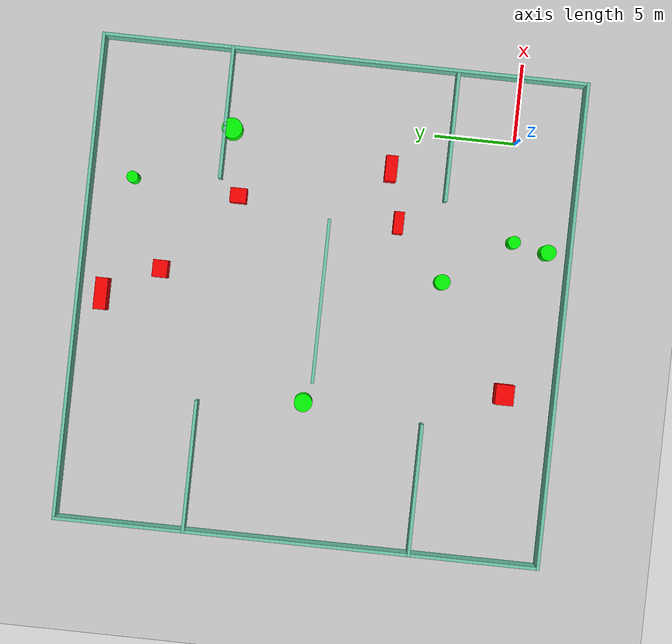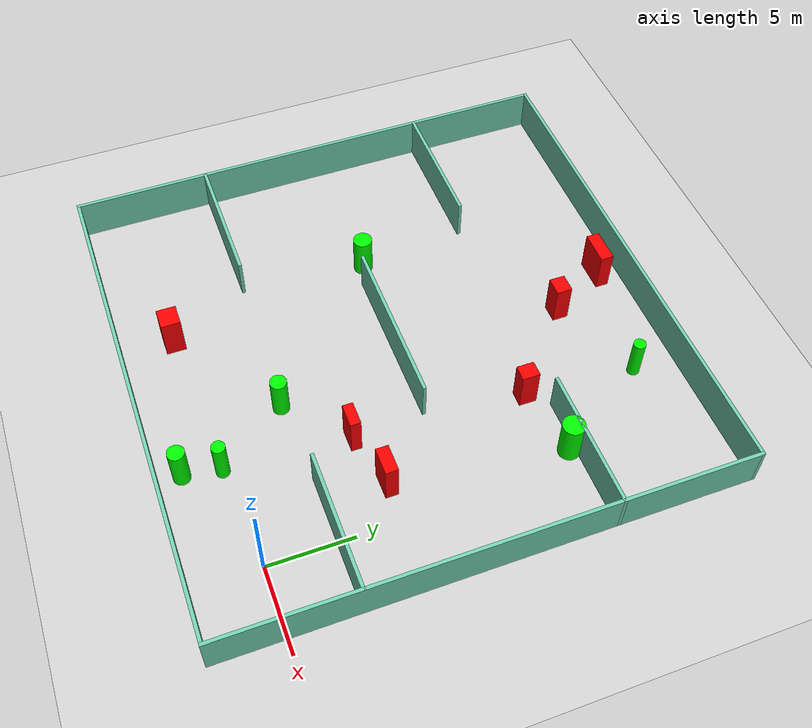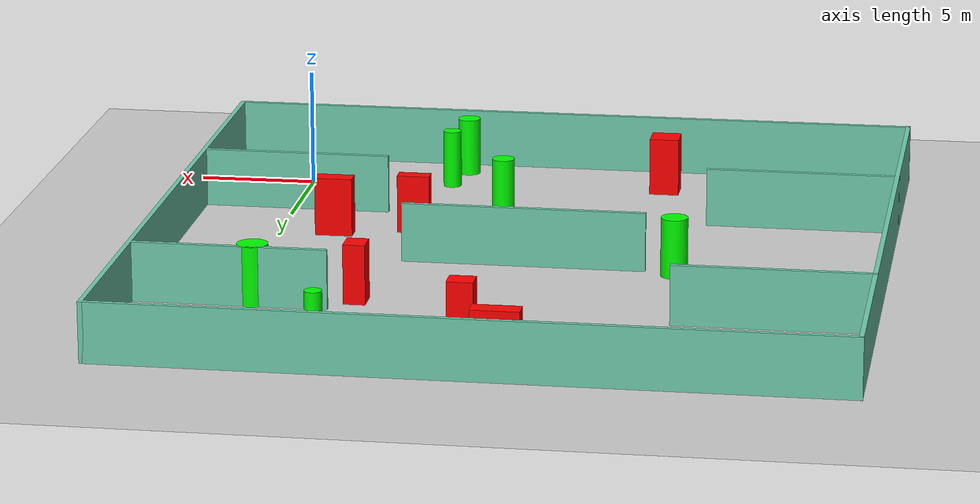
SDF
<sdf version="1.7">
 <world name="default">
  <light name="sun" type="directional">
   <pose>0 0 10 0 -0 0</pose>
   <diffuse>0.8 0.8 0.8 1</diffuse>
   <specular>0.2 0.2 0.2 1</specular>
   <attenuation>
    <range>1000</range>
    <constant>0.9</constant>
    <linear>0.01</linear>
    <quadratic>0.001</quadratic>
   </attenuation>
   <direction>-0.5 0.1 -0.9</direction>
   <spot><inner_angle>0</inner_angle><outer_angle>0</outer_angle><falloff>0</falloff></spot>
  </light>
  <model name="ground_plane">
   <static>1</static>
   <link name="link">
    <collision name="collision">
     <geometry><plane><normal>0 0 1</normal><size>100 100</size></plane></geometry>
     <surface>
      <contact><collide_bitmask>65535</collide_bitmask></contact>
      <friction><ode><mu>100</mu><mu2>50</mu2></ode></friction>
     </surface>
    </collision>
    <visual name="visual">
     <cast_shadows>0</cast_shadows>
     <geometry><plane><normal>0 0 1</normal><size>100 100</size></plane></geometry>
     <material>
      <script><uri>file://media/materials/scripts/gazebo.material</uri><name>Gazebo/Grey</name></script>
     </material>
    </visual>
   </link>
  </model>
  <gravity>0 0 -9.8</gravity>
  <magnetic_field>6e-06 2.3e-05 -4.2e-05</magnetic_field>
  <atmosphere type="adiabatic"/>
  <physics type="ode">
   <max_step_size>0.001</max_step_size>
   <real_time_factor>1</real_time_factor>
   <real_time_update_rate>1000</real_time_update_rate>
  </physics>
  <scene><ambient>0.4 0.4 0.4 1</ambient><background>0.7 0.7 0.7 1</background><shadows>1</shadows></scene>
  <spherical_coordinates>
   <surface_model>EARTH_WGS84</surface_model>
   <latitude_deg>0</latitude_deg>
   <longitude_deg>0</longitude_deg>
   <elevation>0</elevation>
   <heading_deg>0</heading_deg>
  </spherical_coordinates>
  <model name="my_base_walls">
   <link name="Wall_10">
    <collision name="Wall_10_Collision">
     <geometry><box><size>8.2 0.2 2.5</size></box></geometry>
     <pose>0 0 1.25 0 -0 0</pose>
    </collision>
    <visual name="Wall_10_Visual">
     <pose>0 0 1.25 0 -0 0</pose>
     <geometry><box><size>8.2 0.2 2.5</size></box></geometry>
     <material>
      <script><uri>file://media/materials/scripts/gazebo.material</uri><name>Gazebo/Grey</name></script>
      <ambient>0.435294 0.796078 0.67451 1</ambient>
     </material>
     <meta><layer>0</layer></meta>
    </visual>
    <pose>-11 -7 0 0 -0 0</pose>
   </link>
   <link name="Wall_12">
    <collision name="Wall_12_Collision">
     <geometry><box><size>8.2 0.2 2.5</size></box></geometry>
     <pose>0 0 1.25 0 -0 0</pose>
    </collision>
    <visual name="Wall_12_Visual">
     <pose>0 0 1.25 0 -0 0</pose>
     <geometry><box><size>8.2 0.2 2.5</size></box></geometry>
     <material>
      <script><uri>file://media/materials/scripts/gazebo.material</uri><name>Gazebo/Grey</name></script>
      <ambient>0.435294 0.796078 0.67451 1</ambient>
     </material>
     <meta><layer>0</layer></meta>
    </visual>
    <pose>-11 7 0 0 -0 0</pose>
   </link>
   <link name="Wall_14">
    <collision name="Wall_14_Collision">
     <geometry><box><size>8.2 0.2 2.5</size></box></geometry>
     <pose>0 0 1.25 0 -0 0</pose>
    </collision>
    <visual name="Wall_14_Visual">
     <pose>0 0 1.25 0 -0 0</pose>
     <geometry><box><size>8.2 0.2 2.5</size></box></geometry>
     <material>
      <script><uri>file://media/materials/scripts/gazebo.material</uri><name>Gazebo/Grey</name></script>
      <ambient>0.435294 0.796078 0.67451 1</ambient>
     </material>
     <meta><layer>0</layer></meta>
    </visual>
    <pose>11 7 0 0 -0 3.14159</pose>
   </link>
   <link name="Wall_16">
    <collision name="Wall_16_Collision">
     <geometry><box><size>10.2 0.2 2.5</size></box></geometry>
     <pose>0 0 1.25 0 -0 0</pose>
    </collision>
    <visual name="Wall_16_Visual">
     <pose>0 0 1.25 0 -0 0</pose>
     <geometry><box><size>10.2 0.2 2.5</size></box></geometry>
     <material>
      <script><uri>file://media/materials/scripts/gazebo.material</uri><name>Gazebo/Grey</name></script>
      <ambient>0.435294 0.796078 0.67451 1</ambient>
     </material>
     <meta><layer>0</layer></meta>
    </visual>
    <pose>0 0 0 0 -0 3.14159</pose>
   </link>
   <link name="Wall_2">
    <collision name="Wall_2_Collision">
     <geometry><box><size>30.2 0.2 2.5</size></box></geometry>
     <pose>0 0 1.25 0 -0 0</pose>
    </collision>
    <visual name="Wall_2_Visual">
     <pose>0 0 1.25 0 -0 0</pose>
     <geometry><box><size>30.2 0.2 2.5</size></box></geometry>
     <material>
      <script><uri>file://media/materials/scripts/gazebo.material</uri><name>Gazebo/Grey</name></script>
      <ambient>0.435294 0.796078 0.67451 1</ambient>
     </material>
     <meta><layer>0</layer></meta>
    </visual>
    <pose>0 -15 0 0 -0 3.14159</pose>
   </link>
   <link name="Wall_3">
    <collision name="Wall_3_Collision">
     <geometry><box><size>30.2 0.2 2.5</size></box></geometry>
     <pose>0 0 1.25 0 -0 0</pose>
    </collision>
    <visual name="Wall_3_Visual">
     <pose>0 0 1.25 0 -0 0</pose>
     <geometry><box><size>30.2 0.2 2.5</size></box></geometry>
     <material>
      <script><uri>file://media/materials/scripts/gazebo.material</uri><name>Gazebo/Grey</name></script>
      <ambient>0.435294 0.796078 0.67451 1</ambient>
     </material>
     <meta><layer>0</layer></meta>
    </visual>
    <pose>-15 0 0 0 -0 1.5708</pose>
   </link>
   <link name="Wall_4">
    <collision name="Wall_4_Collision">
     <geometry><box><size>30.2 0.2 2.5</size></box></geometry>
     <pose>0 0 1.25 0 -0 0</pose>
    </collision>
    <visual name="Wall_4_Visual">
     <pose>0 0 1.25 0 -0 0</pose>
     <geometry><box><size>30.2 0.2 2.5</size></box></geometry>
     <material>
      <script><uri>file://media/materials/scripts/gazebo.material</uri><name>Gazebo/Grey</name></script>
      <ambient>0.435294 0.796078 0.67451 1</ambient>
     </material>
     <meta><layer>0</layer></meta>
    </visual>
    <pose>0 15 0 0 -0 0</pose>
   </link>
   <link name="Wall_6">
    <collision name="Wall_6_Collision">
     <geometry><box><size>30.2 0.2 2.5</size></box></geometry>
     <pose>0 0 1.25 0 -0 0</pose>
    </collision>
    <visual name="Wall_6_Visual">
     <pose>0 0 1.25 0 -0 0</pose>
     <geometry><box><size>30.2 0.2 2.5</size></box></geometry>
     <material>
      <script><uri>file://media/materials/scripts/gazebo.material</uri><name>Gazebo/Grey</name></script>
      <ambient>0.435294 0.796078 0.67451 1</ambient>
     </material>
     <meta><layer>0</layer></meta>
    </visual>
    <pose>15 0 0 0 -0 1.5708</pose>
   </link>
   <link name="Wall_8">
    <collision name="Wall_8_Collision">
     <geometry><box><size>8.2 0.2 2.5</size></box></geometry>
     <pose>0 0 1.25 0 -0 0</pose>
    </collision>
    <visual name="Wall_8_Visual">
     <pose>0 0 1.25 0 -0 0</pose>
     <geometry><box><size>8.2 0.2 2.5</size></box></geometry>
     <material>
      <script><uri>file://media/materials/scripts/gazebo.material</uri><name>Gazebo/Grey</name></script>
      <ambient>0.435294 0.796078 0.67451 1</ambient>
     </material>
     <meta><layer>0</layer></meta>
    </visual>
    <pose>11 -7 0 0 -0 3.14159</pose>
   </link>
   <static>1</static>
   <pose>-11 11 0 0 -0 0</pose>
  </model>
  <model name="cylinder1">
   <static>1</static>
   <link name="link">
    <inertial>
     <mass>1</mass>
     <inertia><ixx>0.5</ixx><ixy>0</ixy><ixz>0</ixz><iyy>0.5</iyy><iyz>0</iyz><izz>1</izz></inertia>
    </inertial>
    <collision name="collision">
     <geometry><cylinder><radius>0.48361115552450673</radius><length>2.5</length></cylinder></geometry>
    </collision>
    <visual name="visual">
     <geometry><cylinder><radius>0.48361115552450673</radius><length>2.5</length></cylinder></geometry>
     <material>
      <ambient>0 1 0 1</ambient>
      <diffuse>0 1 0 1</diffuse>
      <specular>0.1 0.1 0.1 1</specular>
      <emissive>0 0 0 0</emissive>
     </material>
    </visual>
   </link>
   <pose>-9.059128392471624 3.6702715348862363 1.25 0 0 0</pose>
  </model>
  <model name="cylinder2">
   <static>1</static>
   <link name="link">
    <inertial>
     <mass>1</mass>
     <inertia><ixx>0.5</ixx><ixy>0</ixy><ixz>0</ixz><iyy>0.5</iyy><iyz>0</iyz><izz>1</izz></inertia>
    </inertial>
    <collision name="collision">
     <geometry><cylinder><radius>0.6380948718498066</radius><length>2.5</length></cylinder></geometry>
    </collision>
    <visual name="visual">
     <geometry><cylinder><radius>0.6380948718498066</radius><length>2.5</length></cylinder></geometry>
     <material>
      <ambient>0 1 0 1</ambient>
      <diffuse>0 1 0 1</diffuse>
      <specular>0.1 0.1 0.1 1</specular>
      <emissive>0 0 0 0</emissive>
     </material>
    </visual>
   </link>
   <pose>-0.9684224990667154 17.550435489567228 1.25 0 0 0</pose>
  </model>
  <model name="cylinder3">
   <static>1</static>
   <link name="link">
    <inertial>
     <mass>1</mass>
     <inertia><ixx>0.5</ixx><ixy>0</ixy><ixz>0</ixz><iyy>0.5</iyy><iyz>0</iyz><izz>1</izz></inertia>
    </inertial>
    <collision name="collision">
     <geometry><cylinder><radius>0.4887220908700379</radius><length>2.5</length></cylinder></geometry>
    </collision>
    <visual name="visual">
     <geometry><cylinder><radius>0.4887220908700379</radius><length>2.5</length></cylinder></geometry>
     <material>
      <ambient>0 1 0 1</ambient>
      <diffuse>0 1 0 1</diffuse>
      <specular>0.1 0.1 0.1 1</specular>
      <emissive>0 0 0 0</emissive>
     </material>
    </visual>
   </link>
   <pose>-6.578670815010728 -2.627177614565456 1.25 0 0 0</pose>
  </model>
  <model name="cylinder4">
   <static>1</static>
   <link name="link">
    <inertial>
     <mass>1</mass>
     <inertia><ixx>0.5</ixx><ixy>0</ixy><ixz>0</ixz><iyy>0.5</iyy><iyz>0</iyz><izz>1</izz></inertia>
    </inertial>
    <collision name="collision">
     <geometry><cylinder><radius>0.3928988408508365</radius><length>2.5</length></cylinder></geometry>
    </collision>
    <visual name="visual">
     <geometry><cylinder><radius>0.3928988408508365</radius><length>2.5</length></cylinder></geometry>
     <material>
      <ambient>0 1 0 1</ambient>
      <diffuse>0 1 0 1</diffuse>
      <specular>0.1 0.1 0.1 1</specular>
      <emissive>0 0 0 0</emissive>
     </material>
    </visual>
   </link>
   <pose>-6.161032865576805 -0.4720946187778958 1.25 0 0 0</pose>
  </model>
  <model name="cylinder5">
   <static>1</static>
   <link name="link">
    <inertial>
     <mass>1</mass>
     <inertia><ixx>0.5</ixx><ixy>0</ixy><ixz>0</ixz><iyy>0.5</iyy><iyz>0</iyz><izz>1</izz></inertia>
    </inertial>
    <collision name="collision">
     <geometry><cylinder><radius>0.3566019229148118</radius><length>2.5</length></cylinder></geometry>
    </collision>
    <visual name="visual">
     <geometry><cylinder><radius>0.3566019229148118</radius><length>2.5</length></cylinder></geometry>
     <material>
      <ambient>0 1 0 1</ambient>
      <diffuse>0 1 0 1</diffuse>
      <specular>0.1 0.1 0.1 1</specular>
      <emissive>0 0 0 0</emissive>
     </material>
    </visual>
   </link>
   <pose>-4.586129920268032 23.344670526341567 1.25 0 0 0</pose>
  </model>
  <model name="cylinder6">
   <static>1</static>
   <link name="link">
    <inertial>
     <mass>1</mass>
     <inertia><ixx>0.5</ixx><ixy>0</ixy><ixz>0</ixz><iyy>0.5</iyy><iyz>0</iyz><izz>1</izz></inertia>
    </inertial>
    <collision name="collision">
     <geometry><cylinder><radius>0.5634502462901253</radius><length>2.5</length></cylinder></geometry>
    </collision>
    <visual name="visual">
     <geometry><cylinder><radius>0.5634502462901253</radius><length>2.5</length></cylinder></geometry>
     <material>
      <ambient>0 1 0 1</ambient>
      <diffuse>0 1 0 1</diffuse>
      <specular>0.1 0.1 0.1 1</specular>
      <emissive>0 0 0 0</emissive>
     </material>
    </visual>
   </link>
   <pose>-17.338673748696166 11.439401426015893 1.25 0 0 0</pose>
  </model>
  <model name="box1">
   <static>1</static>
   <link name="link">
    <inertial>
     <mass>1</mass>
     <inertia><ixx>0.083</ixx><ixy>0</ixy><ixz>0</ixz><iyy>0.083</iyy><iyz>0</iyz><izz>0.083</izz></inertia>
    </inertial>
    <collision name="collision">
     <geometry><box><size>1.9822506181855593 0.7745365893817013 2.5</size></box></geometry>
    </collision>
    <visual name="visual">
     <geometry><box><size>1.9822506181855593 0.7745365893817013 2.5</size></box></geometry>
     <material>
      <ambient>1 0 0 1</ambient>
      <diffuse>1 0 0 1</diffuse>
      <specular>0.1 0.1 0.1 1</specular>
      <emissive>0 0 0 0</emissive>
     </material>
    </visual>
    <sensor name="my_contact" type="contact">
     <contact><collision>box_collision</collision><topic>__default_topic__</topic></contact>
    </sensor>
   </link>
   <pose>-11.936907988348315 24.547387466823658 1.25 0 0 0</pose>
  </model>
  <model name="box2">
   <static>1</static>
   <link name="link">
    <inertial>
     <mass>1</mass>
     <inertia><ixx>0.083</ixx><ixy>0</ixy><ixz>0</ixz><iyy>0.083</iyy><iyz>0</iyz><izz>0.083</izz></inertia>
    </inertial>
    <collision name="collision">
     <geometry><box><size>1.3772827112946269 0.6090613917087166 2.5</size></box></geometry>
    </collision>
    <visual name="visual">
     <geometry><box><size>1.3772827112946269 0.6090613917087166 2.5</size></box></geometry>
     <material>
      <ambient>1 0 0 1</ambient>
      <diffuse>1 0 0 1</diffuse>
      <specular>0.1 0.1 0.1 1</specular>
      <emissive>0 0 0 0</emissive>
     </material>
    </visual>
    <sensor name="my_contact" type="contact">
     <contact><collision>box_collision</collision><topic>__default_topic__</topic></contact>
    </sensor>
   </link>
   <pose>-5.692920238244547 6.731338863660154 1.25 0 0 0</pose>
  </model>
  <model name="box3">
   <static>1</static>
   <link name="link">
    <inertial>
     <mass>1</mass>
     <inertia><ixx>0.083</ixx><ixy>0</ixy><ixz>0</ixz><iyy>0.083</iyy><iyz>0</iyz><izz>0.083</izz></inertia>
    </inertial>
    <collision name="collision">
     <geometry><box><size>1.265811230927568 1.142803423442458 2.5</size></box></geometry>
    </collision>
    <visual name="visual">
     <geometry><box><size>1.265811230927568 1.142803423442458 2.5</size></box></geometry>
     <material>
      <ambient>1 0 0 1</ambient>
      <diffuse>1 0 0 1</diffuse>
      <specular>0.1 0.1 0.1 1</specular>
      <emissive>0 0 0 0</emissive>
     </material>
    </visual>
    <sensor name="my_contact" type="contact">
     <contact><collision>box_collision</collision><topic>__default_topic__</topic></contact>
    </sensor>
   </link>
   <pose>-15.573998619316448 -0.8710700432204117 1.25 0 0 0</pose>
  </model>
  <model name="box4">
   <static>1</static>
   <link name="link">
    <inertial>
     <mass>1</mass>
     <inertia><ixx>0.083</ixx><ixy>0</ixy><ixz>0</ixz><iyy>0.083</iyy><iyz>0</iyz><izz>0.083</izz></inertia>
    </inertial>
    <collision name="collision">
     <geometry><box><size>1.5912126658507688 0.7332381420875365 2.5</size></box></geometry>
    </collision>
    <visual name="visual">
     <geometry><box><size>1.5912126658507688 0.7332381420875365 2.5</size></box></geometry>
     <material>
      <ambient>1 0 0 1</ambient>
      <diffuse>1 0 0 1</diffuse>
      <specular>0.1 0.1 0.1 1</specular>
      <emissive>0 0 0 0</emissive>
     </material>
    </visual>
    <sensor name="my_contact" type="contact">
     <contact><collision>box_collision</collision><topic>__default_topic__</topic></contact>
    </sensor>
   </link>
   <pose>-2.40517945042728 7.533545148423258 1.25 0 0 0</pose>
  </model>
  <model name="box5">
   <static>1</static>
   <link name="link">
    <inertial>
     <mass>1</mass>
     <inertia><ixx>0.083</ixx><ixy>0</ixy><ixz>0</ixz><iyy>0.083</iyy><iyz>0</iyz><izz>0.083</izz></inertia>
    </inertial>
    <collision name="collision">
     <geometry><box><size>1.079305790228846 0.9223539625316458 2.5</size></box></geometry>
    </collision>
    <visual name="visual">
     <geometry><box><size>1.079305790228846 0.9223539625316458 2.5</size></box></geometry>
     <material>
      <ambient>1 0 0 1</ambient>
      <diffuse>1 0 0 1</diffuse>
      <specular>0.1 0.1 0.1 1</specular>
      <emissive>0 0 0 0</emissive>
     </material>
    </visual>
    <sensor name="my_contact" type="contact">
     <contact><collision>box_collision</collision><topic>__default_topic__</topic></contact>
    </sensor>
   </link>
   <pose>-10.037067448924663 21.070245788915408 1.25 0 0 0</pose>
  </model>
  <model name="box6">
   <static>1</static>
   <link name="link">
    <inertial>
     <mass>1</mass>
     <inertia><ixx>0.083</ixx><ixy>0</ixy><ixz>0</ixz><iyy>0.083</iyy><iyz>0</iyz><izz>0.083</izz></inertia>
    </inertial>
    <collision name="collision">
     <geometry><box><size>0.9030604293444877 1.0213691041844335 2.5</size></box></geometry>
    </collision>
    <visual name="visual">
     <geometry><box><size>0.9030604293444877 1.0213691041844335 2.5</size></box></geometry>
     <material>
      <ambient>1 0 0 1</ambient>
      <diffuse>1 0 0 1</diffuse>
      <specular>0.1 0.1 0.1 1</specular>
      <emissive>0 0 0 0</emissive>
     </material>
    </visual>
    <sensor name="my_contact" type="contact">
     <contact><collision>box_collision</collision><topic>__default_topic__</topic></contact>
    </sensor>
   </link>
   <pose>-5.040067395973587 16.74574878802056 1.25 0 0 0</pose>
  </model>
 </world>
</sdf>
